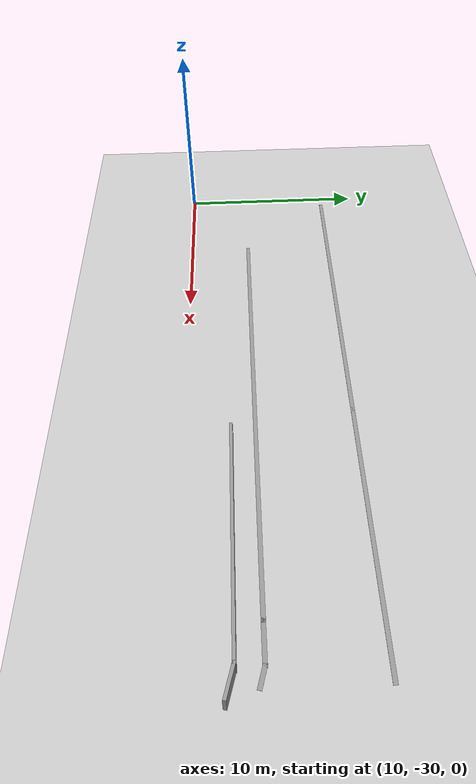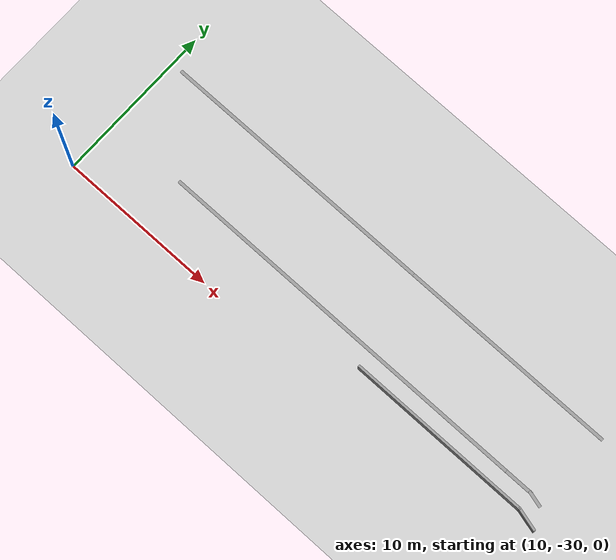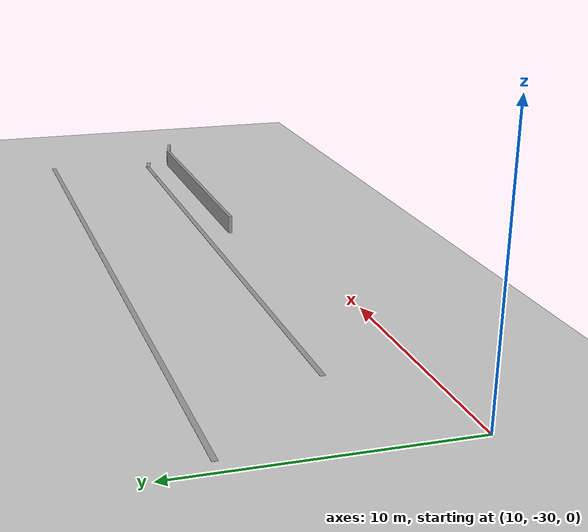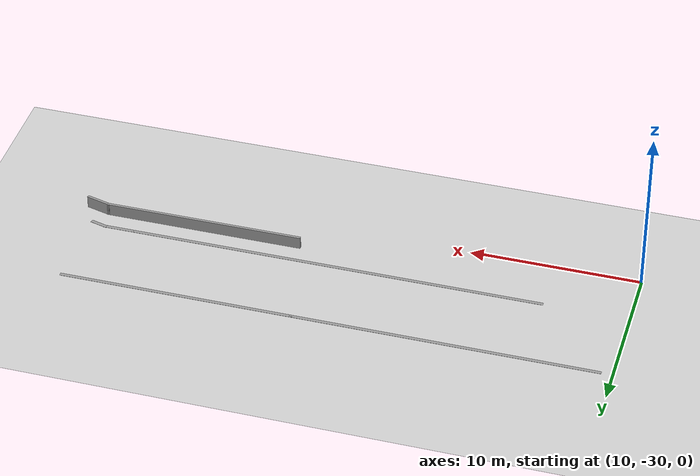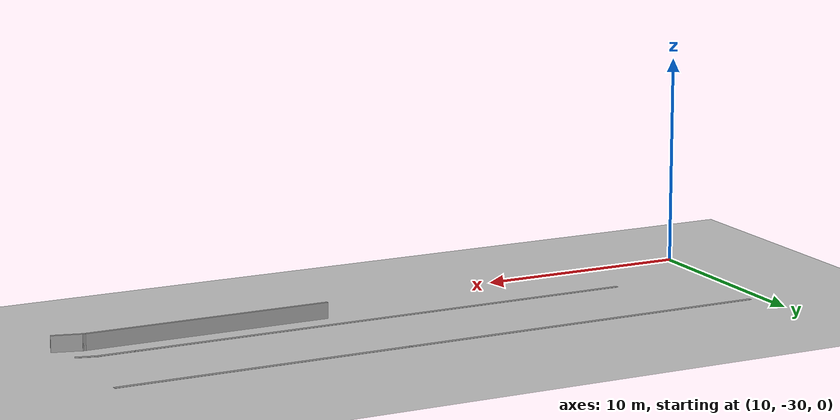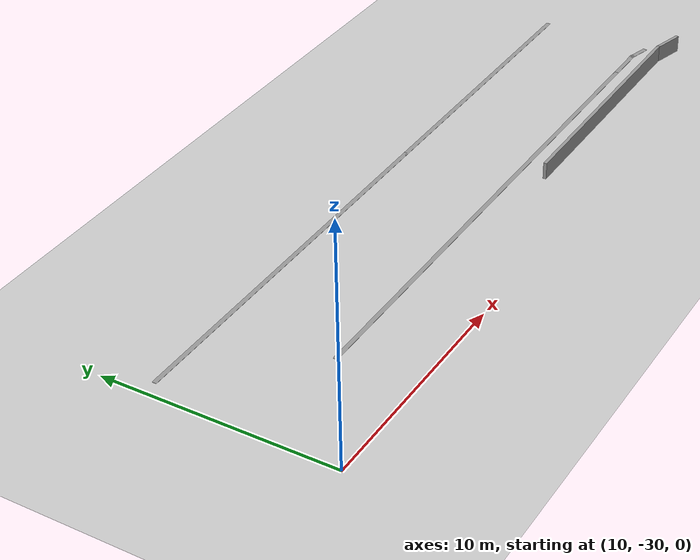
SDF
<sdf version="1.6">
 <world name="default">
  <model name="ground_plane">
   <static>1</static>
   <link name="link">
    <collision name="collision">
     <geometry><plane><normal>0 0 1</normal><size>100 100</size></plane></geometry>
     <surface>
      <contact><collide_bitmask>65535</collide_bitmask></contact>
      <friction><ode><mu>100</mu><mu2>50</mu2></ode></friction>
     </surface>
    </collision>
    <visual name="visual">
     <cast_shadows>0</cast_shadows>
     <geometry><plane><normal>0 0 1</normal><size>100 100</size></plane></geometry>
     <material>
      <script><uri>file://media/materials/scripts/gazebo.material</uri><name>Gazebo/Grey</name></script>
     </material>
    </visual>
   </link>
  </model>
  <model name="GercekDuvarSeritKoyu1">
   <link name="Wall_118">
    <pose>-26.7714 -18.0641 0 0 0 -1.82797</pose>
    <inertial>
     <mass>1</mass>
     <inertia><ixx>1</ixx><ixy>0</ixy><ixz>0</ixz><iyy>1</iyy><iyz>0</iyz><izz>1</izz></inertia>
    </inertial>
    <visual name="Wall_118_Visual">
     <pose>0 0 0.375 0 -0 0</pose>
     <geometry><box><size>1.52204 0.15 0.75</size></box></geometry>
     <material>
      <script><uri>file://media/materials/scripts/gazebo.material</uri><name>Gazebo/Grey</name></script>
      <ambient>0.5 0.5 0.5 1</ambient>
      <shader type="pixel"><normal_map>__default__</normal_map></shader>
      <diffuse>0.7 0.7 0.7 1</diffuse>
      <specular>0.01 0.01 0.01 1</specular>
      <emissive>0 0 0 1</emissive>
     </material>
     <meta><layer>0</layer></meta>
    </visual>
    <collision name="Wall_118_Collision">
     <pose>0 0 0.375 0 -0 0</pose>
     <geometry><box><size>1.52204 0.15 0.75</size></box></geometry>
     <surface>
      <friction>
       <ode><mu>1</mu><mu2>1</mu2><fdir1>0 0 0</fdir1><slip1>0</slip1><slip2>0</slip2></ode>
       <torsional>
        <coefficient>1</coefficient>
        <patch_radius>0</patch_radius>
        <surface_radius>0</surface_radius>
        <use_patch_radius>1</use_patch_radius>
        <ode><slip>0</slip></ode>
       </torsional>
      </friction>
      <bounce><restitution_coefficient>0</restitution_coefficient><threshold>1e+06</threshold></bounce>
      <contact>
       <collide_without_contact>0</collide_without_contact>
       <collide_without_contact_bitmask>1</collide_without_contact_bitmask>
       <collide_bitmask>1</collide_bitmask>
       <ode>
        <soft_cfm>0</soft_cfm>
        <soft_erp>0.2</soft_erp>
        <kp>1e+13</kp>
        <kd>1</kd>
        <max_vel>0.01</max_vel>
        <min_depth>0</min_depth>
       </ode>
       <bullet>
        <split_impulse>1</split_impulse>
        <split_impulse_penetration_threshold>-0.01</split_impulse_penetration_threshold>
        <soft_cfm>0</soft_cfm>
        <soft_erp>0.2</soft_erp>
        <kp>1e+13</kp>
        <kd>1</kd>
       </bullet>
      </contact>
     </surface>
    </collision>
   </link>
   <link name="Wall_120">
    <pose>-26.9459 -24.5176 0 0 0 -1.5708</pose>
    <inertial>
     <mass>1</mass>
     <inertia><ixx>1</ixx><ixy>0</ixy><ixz>0</ixz><iyy>1</iyy><iyz>0</iyz><izz>1</izz></inertia>
    </inertial>
    <visual name="Wall_120_Visual">
     <pose>0 0 0.375 0 -0 0</pose>
     <geometry><box><size>11.73 0.15 0.75</size></box></geometry>
     <material>
      <script><uri>file://media/materials/scripts/gazebo.material</uri><name>Gazebo/Grey</name></script>
      <ambient>0.5 0.5 0.5 1</ambient>
      <shader type="pixel"><normal_map>__default__</normal_map></shader>
      <diffuse>0.7 0.7 0.7 1</diffuse>
      <specular>0.01 0.01 0.01 1</specular>
      <emissive>0 0 0 1</emissive>
     </material>
     <meta><layer>0</layer></meta>
    </visual>
    <collision name="Wall_120_Collision">
     <pose>0 0 0.375 0 -0 0</pose>
     <geometry><box><size>11.73 0.15 0.75</size></box></geometry>
     <surface>
      <friction>
       <ode><mu>1</mu><mu2>1</mu2><fdir1>0 0 0</fdir1><slip1>0</slip1><slip2>0</slip2></ode>
       <torsional>
        <coefficient>1</coefficient>
        <patch_radius>0</patch_radius>
        <surface_radius>0</surface_radius>
        <use_patch_radius>1</use_patch_radius>
        <ode><slip>0</slip></ode>
       </torsional>
      </friction>
      <bounce><restitution_coefficient>0</restitution_coefficient><threshold>1e+06</threshold></bounce>
      <contact>
       <collide_without_contact>0</collide_without_contact>
       <collide_without_contact_bitmask>1</collide_without_contact_bitmask>
       <collide_bitmask>1</collide_bitmask>
       <ode>
        <soft_cfm>0</soft_cfm>
        <soft_erp>0.2</soft_erp>
        <kp>1e+13</kp>
        <kd>1</kd>
        <max_vel>0.01</max_vel>
        <min_depth>0</min_depth>
       </ode>
       <bullet>
        <split_impulse>1</split_impulse>
        <split_impulse_penetration_threshold>-0.01</split_impulse_penetration_threshold>
        <soft_cfm>0</soft_cfm>
        <soft_erp>0.2</soft_erp>
        <kp>1e+13</kp>
        <kd>1</kd>
       </bullet>
      </contact>
     </surface>
    </collision>
   </link>
   <link name="Wall_346">
    <pose>-32.8939 -40.3566 0 0 -0 1.5708</pose>
    <visual name="Wall_346_Visual">
     <pose>0 0 0.005 0 -0 0</pose>
     <geometry><box><size>17.8 0.2 0.01</size></box></geometry>
     <material>
      <script><uri>file://media/materials/scripts/gazebo.material</uri><name>Gazebo/Grey</name></script>
      <ambient>1 1 1 1</ambient>
      <shader type="pixel"/>
     </material>
     <meta><layer>0</layer></meta>
    </visual>
    <collision name="Wall_346_Collision">
     <pose>0 0 0.005 0 -0 0</pose>
     <geometry><box><size>17.8 0.2 0.01</size></box></geometry>
     <surface>
      <friction>
       <ode><mu>1</mu><mu2>1</mu2><fdir1>0 0 0</fdir1><slip1>0</slip1><slip2>0</slip2></ode>
       <torsional>
        <coefficient>1</coefficient>
        <patch_radius>0</patch_radius>
        <surface_radius>0</surface_radius>
        <use_patch_radius>1</use_patch_radius>
        <ode><slip>0</slip></ode>
       </torsional>
      </friction>
      <bounce><restitution_coefficient>0</restitution_coefficient><threshold>1e+06</threshold></bounce>
      <contact>
       <collide_without_contact>0</collide_without_contact>
       <collide_without_contact_bitmask>1</collide_without_contact_bitmask>
       <collide_bitmask>1</collide_bitmask>
       <ode>
        <soft_cfm>0</soft_cfm>
        <soft_erp>0.2</soft_erp>
        <kp>1e+13</kp>
        <kd>1</kd>
        <max_vel>0.01</max_vel>
        <min_depth>0</min_depth>
       </ode>
       <bullet>
        <split_impulse>1</split_impulse>
        <split_impulse_penetration_threshold>-0.01</split_impulse_penetration_threshold>
        <soft_cfm>0</soft_cfm>
        <soft_erp>0.2</soft_erp>
        <kp>1e+13</kp>
        <kd>1</kd>
       </bullet>
      </contact>
     </surface>
    </collision>
   </link>
   <link name="Wall_348">
    <pose>-32.8939 -24.7566 0 0 -0 1.5708</pose>
    <visual name="Wall_348_Visual">
     <pose>0 0 0.005 0 -0 0</pose>
     <geometry><box><size>13.8 0.2 0.01</size></box></geometry>
     <material>
      <script><uri>file://media/materials/scripts/gazebo.material</uri><name>Gazebo/Grey</name></script>
      <ambient>1 1 1 1</ambient>
      <shader type="pixel"/>
     </material>
     <meta><layer>0</layer></meta>
    </visual>
    <collision name="Wall_348_Collision">
     <pose>0 0 0.005 0 -0 0</pose>
     <geometry><box><size>13.8 0.2 0.01</size></box></geometry>
     <surface>
      <friction>
       <ode><mu>1</mu><mu2>1</mu2><fdir1>0 0 0</fdir1><slip1>0</slip1><slip2>0</slip2></ode>
       <torsional>
        <coefficient>1</coefficient>
        <patch_radius>0</patch_radius>
        <surface_radius>0</surface_radius>
        <use_patch_radius>1</use_patch_radius>
        <ode><slip>0</slip></ode>
       </torsional>
      </friction>
      <bounce><restitution_coefficient>0</restitution_coefficient><threshold>1e+06</threshold></bounce>
      <contact>
       <collide_without_contact>0</collide_without_contact>
       <collide_without_contact_bitmask>1</collide_without_contact_bitmask>
       <collide_bitmask>1</collide_bitmask>
       <ode>
        <soft_cfm>0</soft_cfm>
        <soft_erp>0.2</soft_erp>
        <kp>1e+13</kp>
        <kd>1</kd>
        <max_vel>0.01</max_vel>
        <min_depth>0</min_depth>
       </ode>
       <bullet>
        <split_impulse>1</split_impulse>
        <split_impulse_penetration_threshold>-0.01</split_impulse_penetration_threshold>
        <soft_cfm>0</soft_cfm>
        <soft_erp>0.2</soft_erp>
        <kp>1e+13</kp>
        <kd>1</kd>
       </bullet>
      </contact>
     </surface>
    </collision>
   </link>
   <link name="Wall_409">
    <pose>-27.9829 -18.4711 0 0 0 -1.83261</pose>
    <visual name="Wall_409_Visual">
     <pose>0 0 0.005 0 -0 0</pose>
     <geometry><box><size>1.05037 0.2 0.01</size></box></geometry>
     <material>
      <script><uri>file://media/materials/scripts/gazebo.material</uri><name>Gazebo/Grey</name></script>
      <ambient>1 1 1 1</ambient>
      <shader type="pixel"/>
     </material>
     <meta><layer>0</layer></meta>
    </visual>
    <collision name="Wall_409_Collision">
     <pose>0 0 0.005 0 -0 0</pose>
     <geometry><box><size>1.05037 0.2 0.01</size></box></geometry>
     <surface>
      <friction>
       <ode><mu>1</mu><mu2>1</mu2><fdir1>0 0 0</fdir1><slip1>0</slip1><slip2>0</slip2></ode>
       <torsional>
        <coefficient>1</coefficient>
        <patch_radius>0</patch_radius>
        <surface_radius>0</surface_radius>
        <use_patch_radius>1</use_patch_radius>
        <ode><slip>0</slip></ode>
       </torsional>
      </friction>
      <bounce><restitution_coefficient>0</restitution_coefficient><threshold>1e+06</threshold></bounce>
      <contact>
       <collide_without_contact>0</collide_without_contact>
       <collide_without_contact_bitmask>1</collide_without_contact_bitmask>
       <collide_bitmask>1</collide_bitmask>
       <ode>
        <soft_cfm>0</soft_cfm>
        <soft_erp>0.2</soft_erp>
        <kp>1e+13</kp>
        <kd>1</kd>
        <max_vel>0.01</max_vel>
        <min_depth>0</min_depth>
       </ode>
       <bullet>
        <split_impulse>1</split_impulse>
        <split_impulse_penetration_threshold>-0.01</split_impulse_penetration_threshold>
        <soft_cfm>0</soft_cfm>
        <soft_erp>0.2</soft_erp>
        <kp>1e+13</kp>
        <kd>1</kd>
       </bullet>
      </contact>
     </surface>
    </collision>
   </link>
   <link name="Wall_410">
    <pose>-28.0929 -19.8066 0 0 0 -1.5708</pose>
    <visual name="Wall_410_Visual">
     <pose>0 0 0.005 0 -0 0</pose>
     <geometry><box><size>2.05035 0.2 0.01</size></box></geometry>
     <material>
      <script><uri>file://media/materials/scripts/gazebo.material</uri><name>Gazebo/Grey</name></script>
      <ambient>1 1 1 1</ambient>
      <shader type="pixel"/>
     </material>
     <meta><layer>0</layer></meta>
    </visual>
    <collision name="Wall_410_Collision">
     <pose>0 0 0.005 0 -0 0</pose>
     <geometry><box><size>2.05035 0.2 0.01</size></box></geometry>
     <surface>
      <friction>
       <ode><mu>1</mu><mu2>1</mu2><fdir1>0 0 0</fdir1><slip1>0</slip1><slip2>0</slip2></ode>
       <torsional>
        <coefficient>1</coefficient>
        <patch_radius>0</patch_radius>
        <surface_radius>0</surface_radius>
        <use_patch_radius>1</use_patch_radius>
        <ode><slip>0</slip></ode>
       </torsional>
      </friction>
      <bounce><restitution_coefficient>0</restitution_coefficient><threshold>1e+06</threshold></bounce>
      <contact>
       <collide_without_contact>0</collide_without_contact>
       <collide_without_contact_bitmask>1</collide_without_contact_bitmask>
       <collide_bitmask>1</collide_bitmask>
       <ode>
        <soft_cfm>0</soft_cfm>
        <soft_erp>0.2</soft_erp>
        <kp>1e+13</kp>
        <kd>1</kd>
        <max_vel>0.01</max_vel>
        <min_depth>0</min_depth>
       </ode>
       <bullet>
        <split_impulse>1</split_impulse>
        <split_impulse_penetration_threshold>-0.01</split_impulse_penetration_threshold>
        <soft_cfm>0</soft_cfm>
        <soft_erp>0.2</soft_erp>
        <kp>1e+13</kp>
        <kd>1</kd>
       </bullet>
      </contact>
     </surface>
    </collision>
   </link>
   <link name="Wall_412">
    <pose>-28.0929 -32.7816 0 0 0 -1.5708</pose>
    <visual name="Wall_412_Visual">
     <pose>0 0 0.005 0 -0 0</pose>
     <geometry><box><size>24.3004 0.2 0.01</size></box></geometry>
     <material>
      <script><uri>file://media/materials/scripts/gazebo.material</uri><name>Gazebo/Grey</name></script>
      <ambient>1 1 1 1</ambient>
      <shader type="pixel"/>
     </material>
     <meta><layer>0</layer></meta>
    </visual>
    <collision name="Wall_412_Collision">
     <pose>0 0 0.005 0 -0 0</pose>
     <geometry><box><size>24.3004 0.2 0.01</size></box></geometry>
     <surface>
      <friction>
       <ode><mu>1</mu><mu2>1</mu2><fdir1>0 0 0</fdir1><slip1>0</slip1><slip2>0</slip2></ode>
       <torsional>
        <coefficient>1</coefficient>
        <patch_radius>0</patch_radius>
        <surface_radius>0</surface_radius>
        <use_patch_radius>1</use_patch_radius>
        <ode><slip>0</slip></ode>
       </torsional>
      </friction>
      <bounce><restitution_coefficient>0</restitution_coefficient><threshold>1e+06</threshold></bounce>
      <contact>
       <collide_without_contact>0</collide_without_contact>
       <collide_without_contact_bitmask>1</collide_without_contact_bitmask>
       <collide_bitmask>1</collide_bitmask>
       <ode>
        <soft_cfm>0</soft_cfm>
        <soft_erp>0.2</soft_erp>
        <kp>1e+13</kp>
        <kd>1</kd>
        <max_vel>0.01</max_vel>
        <min_depth>0</min_depth>
       </ode>
       <bullet>
        <split_impulse>1</split_impulse>
        <split_impulse_penetration_threshold>-0.01</split_impulse_penetration_threshold>
        <soft_cfm>0</soft_cfm>
        <soft_erp>0.2</soft_erp>
        <kp>1e+13</kp>
        <kd>1</kd>
       </bullet>
      </contact>
     </surface>
    </collision>
   </link>
   <static>1</static>
   <pose>59.9324 -54.7034 -0 0 0 -1.5695</pose>
  </model>
 </world>
</sdf>
